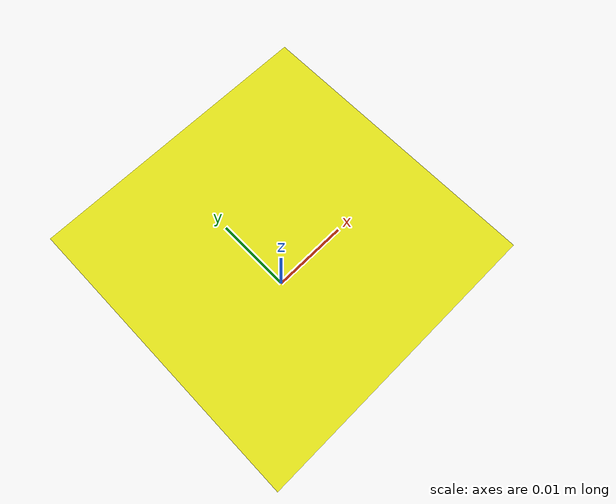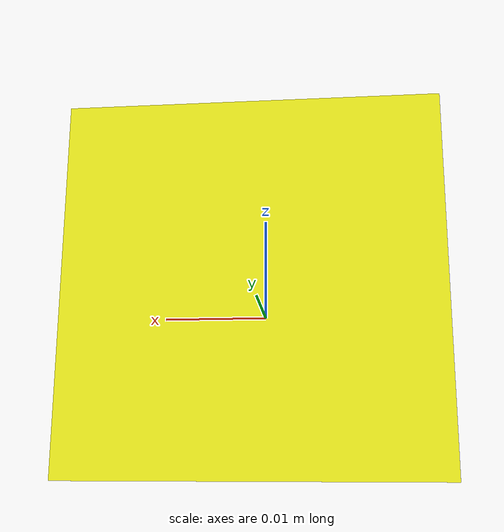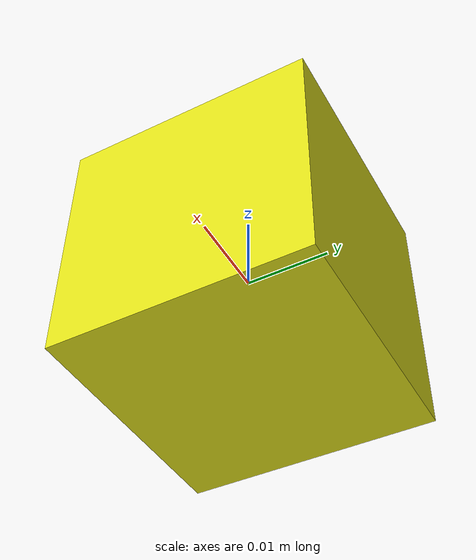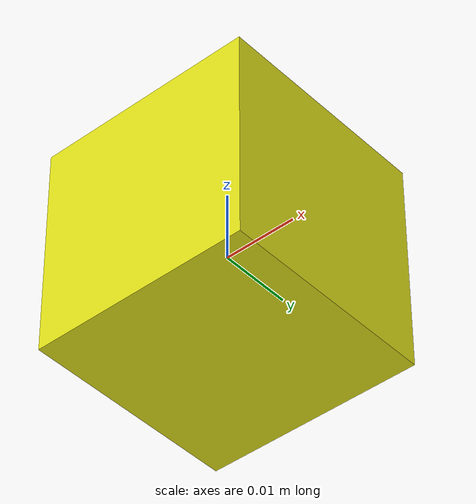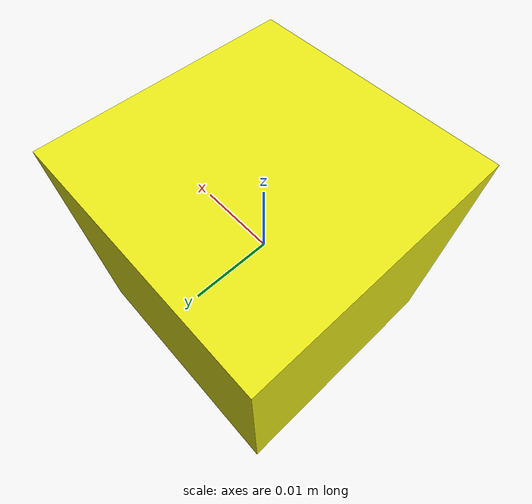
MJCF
<mujoco model="weight_small">
  <worldbody>
    <body>
      <body name="object">
        <geom name="block_geom" type="box" size="0.015 0.015 0.015" rgba="0.9 0.9 0.1 1"
              density="1000" friction="1.5 0.005 0.0001" solref="0.001 1" solimp="0.95 0.99 0.001"
              condim="4" group="0"/>
        <geom name="block_vis" type="box" size="0.015 0.015 0.015" rgba="0.9 0.9 0.1 1"
              contype="0" conaffinity="0" group="1"/>

        <site name="bottom_site" pos="0 0 -0.015" size="0.002" rgba="0 0 0 0"/>
        <site name="top_site" pos="0 0 0.015" size="0.002" rgba="0 0 0 0"/>
      </body>
    </body>
  </worldbody>
</mujoco>
